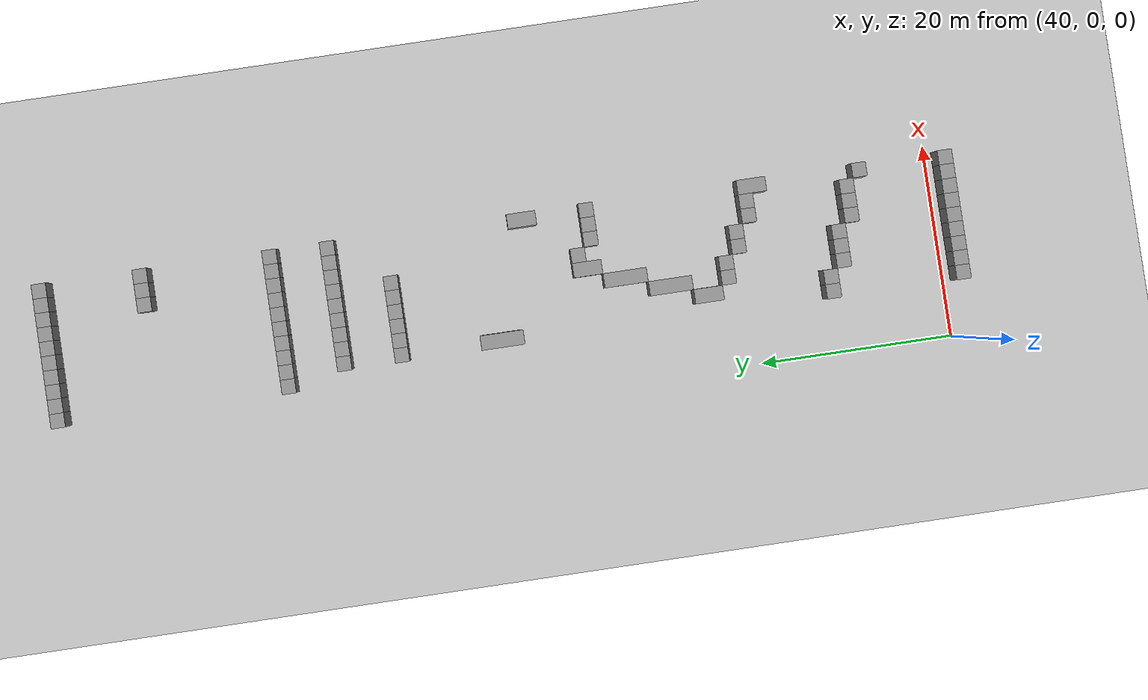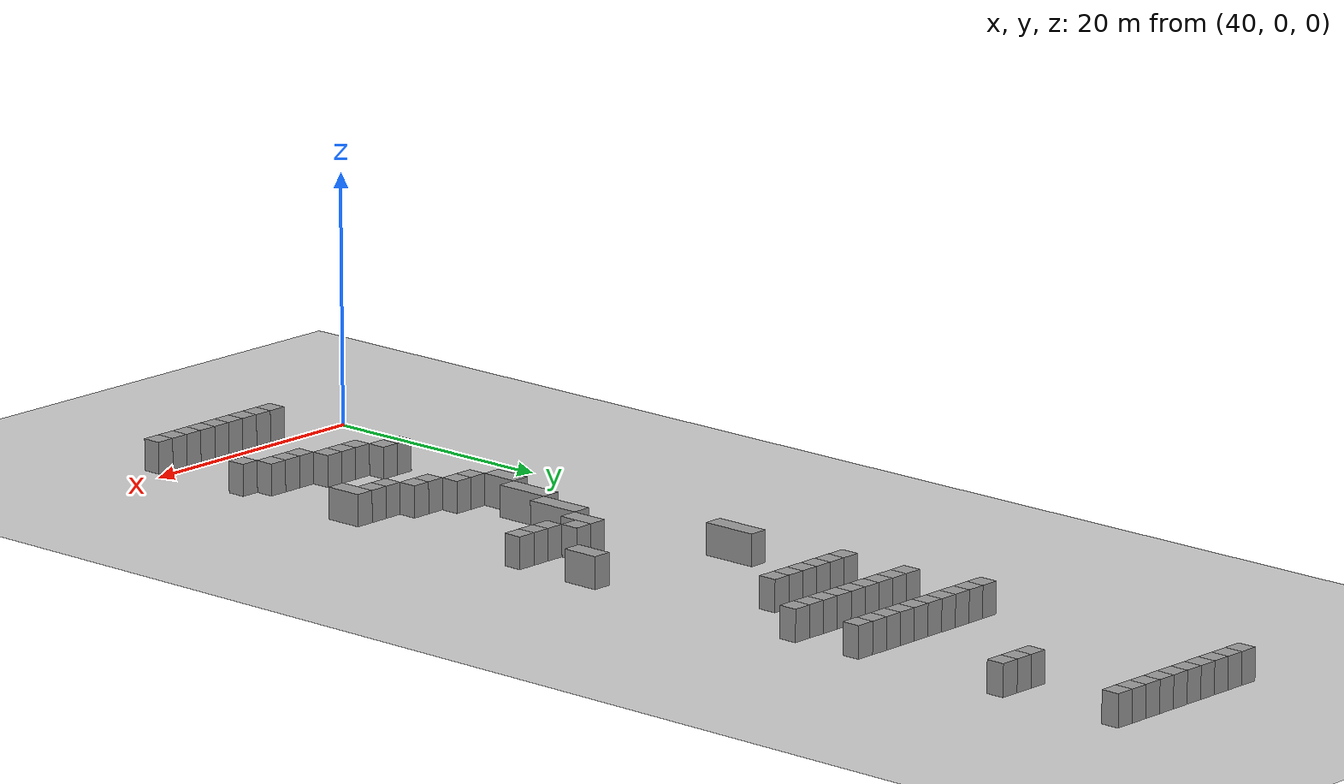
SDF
<sdf version="1.4">
 <world name="1_wall">
  <model name="ground_plane">
   <static>1</static>
   <link name="link">
    <collision name="collision">
     <geometry><plane><normal>0 0 1</normal><size>1000 1000</size></plane></geometry>
     <surface><friction><ode><mu>100</mu><mu2>50</mu2></ode></friction></surface>
    </collision>
    <visual name="visual">
     <cast_shadows>0</cast_shadows>
     <geometry><plane><normal>0 0 1</normal><size>10000 10000</size></plane></geometry>
     <material>
      <script><uri>file://media/materials/scripts/gazebo.material</uri><name>Gazebo/Grey</name></script>
     </material>
    </visual>
    <velocity_decay><linear>0</linear><angular>0</angular></velocity_decay>
   </link>
  </model>
  <model name="Wall_218">
   <static>1</static>
   <link name="Wall_218">
    <collision name="Wall_Collision_218">
     <geometry><box><size>1.5 1.5 2.5</size></box></geometry>
     <pose>0 0 1.25 0 -0 0</pose>
    </collision>
    <visual name="Wall_Visual_218">
     <pose>0 0 1.25 0 -0 0</pose>
     <geometry><box><size>1.5 1.5 2.5</size></box></geometry>
     <material>
      <script><uri>file://media/materials/scripts/gazebo.material</uri><name>Gazebo/Grey</name></script>
     </material>
    </visual>
    <velocity_decay><linear>0</linear><angular>0</angular></velocity_decay>
    <pose>45.0 69.0 0 0 0 1.5707963267948966</pose>
   </link>
  </model>
  <model name="Wall_219">
   <static>1</static>
   <link name="Wall_219">
    <collision name="Wall_Collision_219">
     <geometry><box><size>1.5 1.5 2.5</size></box></geometry>
     <pose>0 0 1.25 0 -0 0</pose>
    </collision>
    <visual name="Wall_Visual_219">
     <pose>0 0 1.25 0 -0 0</pose>
     <geometry><box><size>1.5 1.5 2.5</size></box></geometry>
     <material>
      <script><uri>file://media/materials/scripts/gazebo.material</uri><name>Gazebo/Grey</name></script>
     </material>
    </visual>
    <velocity_decay><linear>0</linear><angular>0</angular></velocity_decay>
    <pose>45.0 93.0 0 0 0 1.5707963267948966</pose>
   </link>
  </model>
  <model name="Wall_220">
   <static>1</static>
   <link name="Wall_220">
    <collision name="Wall_Collision_220">
     <geometry><box><size>1.5 1.5 2.5</size></box></geometry>
     <pose>0 0 1.25 0 -0 0</pose>
    </collision>
    <visual name="Wall_Visual_220">
     <pose>0 0 1.25 0 -0 0</pose>
     <geometry><box><size>1.5 1.5 2.5</size></box></geometry>
     <material>
      <script><uri>file://media/materials/scripts/gazebo.material</uri><name>Gazebo/Grey</name></script>
     </material>
    </visual>
    <velocity_decay><linear>0</linear><angular>0</angular></velocity_decay>
    <pose>46.5 -1.5 0 0 0 1.5707963267948966</pose>
   </link>
  </model>
  <model name="Wall_221">
   <static>1</static>
   <link name="Wall_221">
    <collision name="Wall_Collision_221">
     <geometry><box><size>1.5 1.5 2.5</size></box></geometry>
     <pose>0 0 1.25 0 -0 0</pose>
    </collision>
    <visual name="Wall_Visual_221">
     <pose>0 0 1.25 0 -0 0</pose>
     <geometry><box><size>1.5 1.5 2.5</size></box></geometry>
     <material>
      <script><uri>file://media/materials/scripts/gazebo.material</uri><name>Gazebo/Grey</name></script>
     </material>
    </visual>
    <velocity_decay><linear>0</linear><angular>0</angular></velocity_decay>
    <pose>46.5 12.0 0 0 0 1.5707963267948966</pose>
   </link>
  </model>
  <model name="Wall_222">
   <static>1</static>
   <link name="Wall_222">
    <collision name="Wall_Collision_222">
     <geometry><box><size>4.5 1.5 2.5</size></box></geometry>
     <pose>0 0 1.25 0 -0 0</pose>
    </collision>
    <visual name="Wall_Visual_222">
     <pose>0 0 1.25 0 -0 0</pose>
     <geometry><box><size>4.5 1.5 2.5</size></box></geometry>
     <material>
      <script><uri>file://media/materials/scripts/gazebo.material</uri><name>Gazebo/Grey</name></script>
     </material>
    </visual>
    <velocity_decay><linear>0</linear><angular>0</angular></velocity_decay>
    <pose>46.5 46.5 0 0 0 1.5707963267948966</pose>
   </link>
  </model>
  <model name="Wall_223">
   <static>1</static>
   <link name="Wall_223">
    <collision name="Wall_Collision_223">
     <geometry><box><size>1.5 1.5 2.5</size></box></geometry>
     <pose>0 0 1.25 0 -0 0</pose>
    </collision>
    <visual name="Wall_Visual_223">
     <pose>0 0 1.25 0 -0 0</pose>
     <geometry><box><size>1.5 1.5 2.5</size></box></geometry>
     <material>
      <script><uri>file://media/materials/scripts/gazebo.material</uri><name>Gazebo/Grey</name></script>
     </material>
    </visual>
    <velocity_decay><linear>0</linear><angular>0</angular></velocity_decay>
    <pose>46.5 57.0 0 0 0 1.5707963267948966</pose>
   </link>
  </model>
  <model name="Wall_224">
   <static>1</static>
   <link name="Wall_224">
    <collision name="Wall_Collision_224">
     <geometry><box><size>1.5 1.5 2.5</size></box></geometry>
     <pose>0 0 1.25 0 -0 0</pose>
    </collision>
    <visual name="Wall_Visual_224">
     <pose>0 0 1.25 0 -0 0</pose>
     <geometry><box><size>1.5 1.5 2.5</size></box></geometry>
     <material>
      <script><uri>file://media/materials/scripts/gazebo.material</uri><name>Gazebo/Grey</name></script>
     </material>
    </visual>
    <velocity_decay><linear>0</linear><angular>0</angular></velocity_decay>
    <pose>46.5 63.0 0 0 0 1.5707963267948966</pose>
   </link>
  </model>
  <model name="Wall_225">
   <static>1</static>
   <link name="Wall_225">
    <collision name="Wall_Collision_225">
     <geometry><box><size>1.5 1.5 2.5</size></box></geometry>
     <pose>0 0 1.25 0 -0 0</pose>
    </collision>
    <visual name="Wall_Visual_225">
     <pose>0 0 1.25 0 -0 0</pose>
     <geometry><box><size>1.5 1.5 2.5</size></box></geometry>
     <material>
      <script><uri>file://media/materials/scripts/gazebo.material</uri><name>Gazebo/Grey</name></script>
     </material>
    </visual>
    <velocity_decay><linear>0</linear><angular>0</angular></velocity_decay>
    <pose>46.5 69.0 0 0 0 1.5707963267948966</pose>
   </link>
  </model>
  <model name="Wall_226">
   <static>1</static>
   <link name="Wall_226">
    <collision name="Wall_Collision_226">
     <geometry><box><size>1.5 1.5 2.5</size></box></geometry>
     <pose>0 0 1.25 0 -0 0</pose>
    </collision>
    <visual name="Wall_Visual_226">
     <pose>0 0 1.25 0 -0 0</pose>
     <geometry><box><size>1.5 1.5 2.5</size></box></geometry>
     <material>
      <script><uri>file://media/materials/scripts/gazebo.material</uri><name>Gazebo/Grey</name></script>
     </material>
    </visual>
    <velocity_decay><linear>0</linear><angular>0</angular></velocity_decay>
    <pose>46.5 93.0 0 0 0 1.5707963267948966</pose>
   </link>
  </model>
  <model name="Wall_227">
   <static>1</static>
   <link name="Wall_227">
    <collision name="Wall_Collision_227">
     <geometry><box><size>1.5 1.5 2.5</size></box></geometry>
     <pose>0 0 1.25 0 -0 0</pose>
    </collision>
    <visual name="Wall_Visual_227">
     <pose>0 0 1.25 0 -0 0</pose>
     <geometry><box><size>1.5 1.5 2.5</size></box></geometry>
     <material>
      <script><uri>file://media/materials/scripts/gazebo.material</uri><name>Gazebo/Grey</name></script>
     </material>
    </visual>
    <velocity_decay><linear>0</linear><angular>0</angular></velocity_decay>
    <pose>48.0 -1.5 0 0 0 1.5707963267948966</pose>
   </link>
  </model>
  <model name="Wall_228">
   <static>1</static>
   <link name="Wall_228">
    <collision name="Wall_Collision_228">
     <geometry><box><size>1.5 1.5 2.5</size></box></geometry>
     <pose>0 0 1.25 0 -0 0</pose>
    </collision>
    <visual name="Wall_Visual_228">
     <pose>0 0 1.25 0 -0 0</pose>
     <geometry><box><size>1.5 1.5 2.5</size></box></geometry>
     <material>
      <script><uri>file://media/materials/scripts/gazebo.material</uri><name>Gazebo/Grey</name></script>
     </material>
    </visual>
    <velocity_decay><linear>0</linear><angular>0</angular></velocity_decay>
    <pose>48.0 12.0 0 0 0 1.5707963267948966</pose>
   </link>
  </model>
  <model name="Wall_229">
   <static>1</static>
   <link name="Wall_229">
    <collision name="Wall_Collision_229">
     <geometry><box><size>3.0 1.5 2.5</size></box></geometry>
     <pose>0 0 1.25 0 -0 0</pose>
    </collision>
    <visual name="Wall_Visual_229">
     <pose>0 0 1.25 0 -0 0</pose>
     <geometry><box><size>3.0 1.5 2.5</size></box></geometry>
     <material>
      <script><uri>file://media/materials/scripts/gazebo.material</uri><name>Gazebo/Grey</name></script>
     </material>
    </visual>
    <velocity_decay><linear>0</linear><angular>0</angular></velocity_decay>
    <pose>48.0 24.75 0 0 0 1.5707963267948966</pose>
   </link>
  </model>
  <model name="Wall_230">
   <static>1</static>
   <link name="Wall_230">
    <collision name="Wall_Collision_230">
     <geometry><box><size>1.5 1.5 2.5</size></box></geometry>
     <pose>0 0 1.25 0 -0 0</pose>
    </collision>
    <visual name="Wall_Visual_230">
     <pose>0 0 1.25 0 -0 0</pose>
     <geometry><box><size>1.5 1.5 2.5</size></box></geometry>
     <material>
      <script><uri>file://media/materials/scripts/gazebo.material</uri><name>Gazebo/Grey</name></script>
     </material>
    </visual>
    <velocity_decay><linear>0</linear><angular>0</angular></velocity_decay>
    <pose>48.0 57.0 0 0 0 1.5707963267948966</pose>
   </link>
  </model>
  <model name="Wall_231">
   <static>1</static>
   <link name="Wall_231">
    <collision name="Wall_Collision_231">
     <geometry><box><size>1.5 1.5 2.5</size></box></geometry>
     <pose>0 0 1.25 0 -0 0</pose>
    </collision>
    <visual name="Wall_Visual_231">
     <pose>0 0 1.25 0 -0 0</pose>
     <geometry><box><size>1.5 1.5 2.5</size></box></geometry>
     <material>
      <script><uri>file://media/materials/scripts/gazebo.material</uri><name>Gazebo/Grey</name></script>
     </material>
    </visual>
    <velocity_decay><linear>0</linear><angular>0</angular></velocity_decay>
    <pose>48.0 63.0 0 0 0 1.5707963267948966</pose>
   </link>
  </model>
  <model name="Wall_232">
   <static>1</static>
   <link name="Wall_232">
    <collision name="Wall_Collision_232">
     <geometry><box><size>1.5 1.5 2.5</size></box></geometry>
     <pose>0 0 1.25 0 -0 0</pose>
    </collision>
    <visual name="Wall_Visual_232">
     <pose>0 0 1.25 0 -0 0</pose>
     <geometry><box><size>1.5 1.5 2.5</size></box></geometry>
     <material>
      <script><uri>file://media/materials/scripts/gazebo.material</uri><name>Gazebo/Grey</name></script>
     </material>
    </visual>
    <velocity_decay><linear>0</linear><angular>0</angular></velocity_decay>
    <pose>48.0 69.0 0 0 0 1.5707963267948966</pose>
   </link>
  </model>
  <model name="Wall_233">
   <static>1</static>
   <link name="Wall_233">
    <collision name="Wall_Collision_233">
     <geometry><box><size>1.5 1.5 2.5</size></box></geometry>
     <pose>0 0 1.25 0 -0 0</pose>
    </collision>
    <visual name="Wall_Visual_233">
     <pose>0 0 1.25 0 -0 0</pose>
     <geometry><box><size>1.5 1.5 2.5</size></box></geometry>
     <material>
      <script><uri>file://media/materials/scripts/gazebo.material</uri><name>Gazebo/Grey</name></script>
     </material>
    </visual>
    <velocity_decay><linear>0</linear><angular>0</angular></velocity_decay>
    <pose>48.0 93.0 0 0 0 1.5707963267948966</pose>
   </link>
  </model>
  <model name="Wall_234">
   <static>1</static>
   <link name="Wall_234">
    <collision name="Wall_Collision_234">
     <geometry><box><size>1.5 1.5 2.5</size></box></geometry>
     <pose>0 0 1.25 0 -0 0</pose>
    </collision>
    <visual name="Wall_Visual_234">
     <pose>0 0 1.25 0 -0 0</pose>
     <geometry><box><size>1.5 1.5 2.5</size></box></geometry>
     <material>
      <script><uri>file://media/materials/scripts/gazebo.material</uri><name>Gazebo/Grey</name></script>
     </material>
    </visual>
    <velocity_decay><linear>0</linear><angular>0</angular></velocity_decay>
    <pose>49.5 -1.5 0 0 0 1.5707963267948966</pose>
   </link>
  </model>
  <model name="Wall_235">
   <static>1</static>
   <link name="Wall_235">
    <collision name="Wall_Collision_235">
     <geometry><box><size>1.5 1.5 2.5</size></box></geometry>
     <pose>0 0 1.25 0 -0 0</pose>
    </collision>
    <visual name="Wall_Visual_235">
     <pose>0 0 1.25 0 -0 0</pose>
     <geometry><box><size>1.5 1.5 2.5</size></box></geometry>
     <material>
      <script><uri>file://media/materials/scripts/gazebo.material</uri><name>Gazebo/Grey</name></script>
     </material>
    </visual>
    <velocity_decay><linear>0</linear><angular>0</angular></velocity_decay>
    <pose>49.5 10.5 0 0 0 1.5707963267948966</pose>
   </link>
  </model>
  <model name="Wall_236">
   <static>1</static>
   <link name="Wall_236">
    <collision name="Wall_Collision_236">
     <geometry><box><size>1.5 1.5 2.5</size></box></geometry>
     <pose>0 0 1.25 0 -0 0</pose>
    </collision>
    <visual name="Wall_Visual_236">
     <pose>0 0 1.25 0 -0 0</pose>
     <geometry><box><size>1.5 1.5 2.5</size></box></geometry>
     <material>
      <script><uri>file://media/materials/scripts/gazebo.material</uri><name>Gazebo/Grey</name></script>
     </material>
    </visual>
    <velocity_decay><linear>0</linear><angular>0</angular></velocity_decay>
    <pose>49.5 22.5 0 0 0 1.5707963267948966</pose>
   </link>
  </model>
  <model name="Wall_237">
   <static>1</static>
   <link name="Wall_237">
    <collision name="Wall_Collision_237">
     <geometry><box><size>4.5 1.5 2.5</size></box></geometry>
     <pose>0 0 1.25 0 -0 0</pose>
    </collision>
    <visual name="Wall_Visual_237">
     <pose>0 0 1.25 0 -0 0</pose>
     <geometry><box><size>4.5 1.5 2.5</size></box></geometry>
     <material>
      <script><uri>file://media/materials/scripts/gazebo.material</uri><name>Gazebo/Grey</name></script>
     </material>
    </visual>
    <velocity_decay><linear>0</linear><angular>0</angular></velocity_decay>
    <pose>49.5 28.5 0 0 0 1.5707963267948966</pose>
   </link>
  </model>
  <model name="Wall_238">
   <static>1</static>
   <link name="Wall_238">
    <collision name="Wall_Collision_238">
     <geometry><box><size>1.5 1.5 2.5</size></box></geometry>
     <pose>0 0 1.25 0 -0 0</pose>
    </collision>
    <visual name="Wall_Visual_238">
     <pose>0 0 1.25 0 -0 0</pose>
     <geometry><box><size>1.5 1.5 2.5</size></box></geometry>
     <material>
      <script><uri>file://media/materials/scripts/gazebo.material</uri><name>Gazebo/Grey</name></script>
     </material>
    </visual>
    <velocity_decay><linear>0</linear><angular>0</angular></velocity_decay>
    <pose>49.5 57.0 0 0 0 1.5707963267948966</pose>
   </link>
  </model>
  <model name="Wall_239">
   <static>1</static>
   <link name="Wall_239">
    <collision name="Wall_Collision_239">
     <geometry><box><size>1.5 1.5 2.5</size></box></geometry>
     <pose>0 0 1.25 0 -0 0</pose>
    </collision>
    <visual name="Wall_Visual_239">
     <pose>0 0 1.25 0 -0 0</pose>
     <geometry><box><size>1.5 1.5 2.5</size></box></geometry>
     <material>
      <script><uri>file://media/materials/scripts/gazebo.material</uri><name>Gazebo/Grey</name></script>
     </material>
    </visual>
    <velocity_decay><linear>0</linear><angular>0</angular></velocity_decay>
    <pose>49.5 63.0 0 0 0 1.5707963267948966</pose>
   </link>
  </model>
  <model name="Wall_240">
   <static>1</static>
   <link name="Wall_240">
    <collision name="Wall_Collision_240">
     <geometry><box><size>1.5 1.5 2.5</size></box></geometry>
     <pose>0 0 1.25 0 -0 0</pose>
    </collision>
    <visual name="Wall_Visual_240">
     <pose>0 0 1.25 0 -0 0</pose>
     <geometry><box><size>1.5 1.5 2.5</size></box></geometry>
     <material>
      <script><uri>file://media/materials/scripts/gazebo.material</uri><name>Gazebo/Grey</name></script>
     </material>
    </visual>
    <velocity_decay><linear>0</linear><angular>0</angular></velocity_decay>
    <pose>49.5 69.0 0 0 0 1.5707963267948966</pose>
   </link>
  </model>
  <model name="Wall_241">
   <static>1</static>
   <link name="Wall_241">
    <collision name="Wall_Collision_241">
     <geometry><box><size>1.5 1.5 2.5</size></box></geometry>
     <pose>0 0 1.25 0 -0 0</pose>
    </collision>
    <visual name="Wall_Visual_241">
     <pose>0 0 1.25 0 -0 0</pose>
     <geometry><box><size>1.5 1.5 2.5</size></box></geometry>
     <material>
      <script><uri>file://media/materials/scripts/gazebo.material</uri><name>Gazebo/Grey</name></script>
     </material>
    </visual>
    <velocity_decay><linear>0</linear><angular>0</angular></velocity_decay>
    <pose>49.5 93.0 0 0 0 1.5707963267948966</pose>
   </link>
  </model>
  <model name="Wall_242">
   <static>1</static>
   <link name="Wall_242">
    <collision name="Wall_Collision_242">
     <geometry><box><size>1.5 1.5 2.5</size></box></geometry>
     <pose>0 0 1.25 0 -0 0</pose>
    </collision>
    <visual name="Wall_Visual_242">
     <pose>0 0 1.25 0 -0 0</pose>
     <geometry><box><size>1.5 1.5 2.5</size></box></geometry>
     <material>
      <script><uri>file://media/materials/scripts/gazebo.material</uri><name>Gazebo/Grey</name></script>
     </material>
    </visual>
    <velocity_decay><linear>0</linear><angular>0</angular></velocity_decay>
    <pose>51.0 -1.5 0 0 0 1.5707963267948966</pose>
   </link>
  </model>
  <model name="Wall_243">
   <static>1</static>
   <link name="Wall_243">
    <collision name="Wall_Collision_243">
     <geometry><box><size>1.5 1.5 2.5</size></box></geometry>
     <pose>0 0 1.25 0 -0 0</pose>
    </collision>
    <visual name="Wall_Visual_243">
     <pose>0 0 1.25 0 -0 0</pose>
     <geometry><box><size>1.5 1.5 2.5</size></box></geometry>
     <material>
      <script><uri>file://media/materials/scripts/gazebo.material</uri><name>Gazebo/Grey</name></script>
     </material>
    </visual>
    <velocity_decay><linear>0</linear><angular>0</angular></velocity_decay>
    <pose>51.0 10.5 0 0 0 1.5707963267948966</pose>
   </link>
  </model>
  <model name="Wall_244">
   <static>1</static>
   <link name="Wall_244">
    <collision name="Wall_Collision_244">
     <geometry><box><size>1.5 1.5 2.5</size></box></geometry>
     <pose>0 0 1.25 0 -0 0</pose>
    </collision>
    <visual name="Wall_Visual_244">
     <pose>0 0 1.25 0 -0 0</pose>
     <geometry><box><size>1.5 1.5 2.5</size></box></geometry>
     <material>
      <script><uri>file://media/materials/scripts/gazebo.material</uri><name>Gazebo/Grey</name></script>
     </material>
    </visual>
    <velocity_decay><linear>0</linear><angular>0</angular></velocity_decay>
    <pose>51.0 22.5 0 0 0 1.5707963267948966</pose>
   </link>
  </model>
  <model name="Wall_245">
   <static>1</static>
   <link name="Wall_245">
    <collision name="Wall_Collision_245">
     <geometry><box><size>4.5 1.5 2.5</size></box></geometry>
     <pose>0 0 1.25 0 -0 0</pose>
    </collision>
    <visual name="Wall_Visual_245">
     <pose>0 0 1.25 0 -0 0</pose>
     <geometry><box><size>4.5 1.5 2.5</size></box></geometry>
     <material>
      <script><uri>file://media/materials/scripts/gazebo.material</uri><name>Gazebo/Grey</name></script>
     </material>
    </visual>
    <velocity_decay><linear>0</linear><angular>0</angular></velocity_decay>
    <pose>51.0 33.0 0 0 0 1.5707963267948966</pose>
   </link>
  </model>
  <model name="Wall_246">
   <static>1</static>
   <link name="Wall_246">
    <collision name="Wall_Collision_246">
     <geometry><box><size>1.5 1.5 2.5</size></box></geometry>
     <pose>0 0 1.25 0 -0 0</pose>
    </collision>
    <visual name="Wall_Visual_246">
     <pose>0 0 1.25 0 -0 0</pose>
     <geometry><box><size>1.5 1.5 2.5</size></box></geometry>
     <material>
      <script><uri>file://media/materials/scripts/gazebo.material</uri><name>Gazebo/Grey</name></script>
     </material>
    </visual>
    <velocity_decay><linear>0</linear><angular>0</angular></velocity_decay>
    <pose>51.0 57.0 0 0 0 1.5707963267948966</pose>
   </link>
  </model>
  <model name="Wall_247">
   <static>1</static>
   <link name="Wall_247">
    <collision name="Wall_Collision_247">
     <geometry><box><size>1.5 1.5 2.5</size></box></geometry>
     <pose>0 0 1.25 0 -0 0</pose>
    </collision>
    <visual name="Wall_Visual_247">
     <pose>0 0 1.25 0 -0 0</pose>
     <geometry><box><size>1.5 1.5 2.5</size></box></geometry>
     <material>
      <script><uri>file://media/materials/scripts/gazebo.material</uri><name>Gazebo/Grey</name></script>
     </material>
    </visual>
    <velocity_decay><linear>0</linear><angular>0</angular></velocity_decay>
    <pose>51.0 63.0 0 0 0 1.5707963267948966</pose>
   </link>
  </model>
  <model name="Wall_248">
   <static>1</static>
   <link name="Wall_248">
    <collision name="Wall_Collision_248">
     <geometry><box><size>1.5 1.5 2.5</size></box></geometry>
     <pose>0 0 1.25 0 -0 0</pose>
    </collision>
    <visual name="Wall_Visual_248">
     <pose>0 0 1.25 0 -0 0</pose>
     <geometry><box><size>1.5 1.5 2.5</size></box></geometry>
     <material>
      <script><uri>file://media/materials/scripts/gazebo.material</uri><name>Gazebo/Grey</name></script>
     </material>
    </visual>
    <velocity_decay><linear>0</linear><angular>0</angular></velocity_decay>
    <pose>51.0 69.0 0 0 0 1.5707963267948966</pose>
   </link>
  </model>
  <model name="Wall_249">
   <static>1</static>
   <link name="Wall_249">
    <collision name="Wall_Collision_249">
     <geometry><box><size>1.5 1.5 2.5</size></box></geometry>
     <pose>0 0 1.25 0 -0 0</pose>
    </collision>
    <visual name="Wall_Visual_249">
     <pose>0 0 1.25 0 -0 0</pose>
     <geometry><box><size>1.5 1.5 2.5</size></box></geometry>
     <material>
      <script><uri>file://media/materials/scripts/gazebo.material</uri><name>Gazebo/Grey</name></script>
     </material>
    </visual>
    <velocity_decay><linear>0</linear><angular>0</angular></velocity_decay>
    <pose>51.0 93.0 0 0 0 1.5707963267948966</pose>
   </link>
  </model>
  <model name="Wall_250">
   <static>1</static>
   <link name="Wall_250">
    <collision name="Wall_Collision_250">
     <geometry><box><size>1.5 1.5 2.5</size></box></geometry>
     <pose>0 0 1.25 0 -0 0</pose>
    </collision>
    <visual name="Wall_Visual_250">
     <pose>0 0 1.25 0 -0 0</pose>
     <geometry><box><size>1.5 1.5 2.5</size></box></geometry>
     <material>
      <script><uri>file://media/materials/scripts/gazebo.material</uri><name>Gazebo/Grey</name></script>
     </material>
    </visual>
    <velocity_decay><linear>0</linear><angular>0</angular></velocity_decay>
    <pose>52.5 -1.5 0 0 0 1.5707963267948966</pose>
   </link>
  </model>
  <model name="Wall_251">
   <static>1</static>
   <link name="Wall_251">
    <collision name="Wall_Collision_251">
     <geometry><box><size>1.5 1.5 2.5</size></box></geometry>
     <pose>0 0 1.25 0 -0 0</pose>
    </collision>
    <visual name="Wall_Visual_251">
     <pose>0 0 1.25 0 -0 0</pose>
     <geometry><box><size>1.5 1.5 2.5</size></box></geometry>
     <material>
      <script><uri>file://media/materials/scripts/gazebo.material</uri><name>Gazebo/Grey</name></script>
     </material>
    </visual>
    <velocity_decay><linear>0</linear><angular>0</angular></velocity_decay>
    <pose>52.5 10.5 0 0 0 1.5707963267948966</pose>
   </link>
  </model>
  <model name="Wall_252">
   <static>1</static>
   <link name="Wall_252">
    <collision name="Wall_Collision_252">
     <geometry><box><size>1.5 1.5 2.5</size></box></geometry>
     <pose>0 0 1.25 0 -0 0</pose>
    </collision>
    <visual name="Wall_Visual_252">
     <pose>0 0 1.25 0 -0 0</pose>
     <geometry><box><size>1.5 1.5 2.5</size></box></geometry>
     <material>
      <script><uri>file://media/materials/scripts/gazebo.material</uri><name>Gazebo/Grey</name></script>
     </material>
    </visual>
    <velocity_decay><linear>0</linear><angular>0</angular></velocity_decay>
    <pose>52.5 21.0 0 0 0 1.5707963267948966</pose>
   </link>
  </model>
  <model name="Wall_253">
   <static>1</static>
   <link name="Wall_253">
    <collision name="Wall_Collision_253">
     <geometry><box><size>3.0 1.5 2.5</size></box></geometry>
     <pose>0 0 1.25 0 -0 0</pose>
    </collision>
    <visual name="Wall_Visual_253">
     <pose>0 0 1.25 0 -0 0</pose>
     <geometry><box><size>3.0 1.5 2.5</size></box></geometry>
     <material>
      <script><uri>file://media/materials/scripts/gazebo.material</uri><name>Gazebo/Grey</name></script>
     </material>
    </visual>
    <velocity_decay><linear>0</linear><angular>0</angular></velocity_decay>
    <pose>52.5 36.75 0 0 0 1.5707963267948966</pose>
   </link>
  </model>
  <model name="Wall_254">
   <static>1</static>
   <link name="Wall_254">
    <collision name="Wall_Collision_254">
     <geometry><box><size>1.5 1.5 2.5</size></box></geometry>
     <pose>0 0 1.25 0 -0 0</pose>
    </collision>
    <visual name="Wall_Visual_254">
     <pose>0 0 1.25 0 -0 0</pose>
     <geometry><box><size>1.5 1.5 2.5</size></box></geometry>
     <material>
      <script><uri>file://media/materials/scripts/gazebo.material</uri><name>Gazebo/Grey</name></script>
     </material>
    </visual>
    <velocity_decay><linear>0</linear><angular>0</angular></velocity_decay>
    <pose>52.5 57.0 0 0 0 1.5707963267948966</pose>
   </link>
  </model>
  <model name="Wall_255">
   <static>1</static>
   <link name="Wall_255">
    <collision name="Wall_Collision_255">
     <geometry><box><size>1.5 1.5 2.5</size></box></geometry>
     <pose>0 0 1.25 0 -0 0</pose>
    </collision>
    <visual name="Wall_Visual_255">
     <pose>0 0 1.25 0 -0 0</pose>
     <geometry><box><size>1.5 1.5 2.5</size></box></geometry>
     <material>
      <script><uri>file://media/materials/scripts/gazebo.material</uri><name>Gazebo/Grey</name></script>
     </material>
    </visual>
    <velocity_decay><linear>0</linear><angular>0</angular></velocity_decay>
    <pose>52.5 63.0 0 0 0 1.5707963267948966</pose>
   </link>
  </model>
  <model name="Wall_256">
   <static>1</static>
   <link name="Wall_256">
    <collision name="Wall_Collision_256">
     <geometry><box><size>1.5 1.5 2.5</size></box></geometry>
     <pose>0 0 1.25 0 -0 0</pose>
    </collision>
    <visual name="Wall_Visual_256">
     <pose>0 0 1.25 0 -0 0</pose>
     <geometry><box><size>1.5 1.5 2.5</size></box></geometry>
     <material>
      <script><uri>file://media/materials/scripts/gazebo.material</uri><name>Gazebo/Grey</name></script>
     </material>
    </visual>
    <velocity_decay><linear>0</linear><angular>0</angular></velocity_decay>
    <pose>52.5 69.0 0 0 0 1.5707963267948966</pose>
   </link>
  </model>
  <model name="Wall_257">
   <static>1</static>
   <link name="Wall_257">
    <collision name="Wall_Collision_257">
     <geometry><box><size>1.5 1.5 2.5</size></box></geometry>
     <pose>0 0 1.25 0 -0 0</pose>
    </collision>
    <visual name="Wall_Visual_257">
     <pose>0 0 1.25 0 -0 0</pose>
     <geometry><box><size>1.5 1.5 2.5</size></box></geometry>
     <material>
      <script><uri>file://media/materials/scripts/gazebo.material</uri><name>Gazebo/Grey</name></script>
     </material>
    </visual>
    <velocity_decay><linear>0</linear><angular>0</angular></velocity_decay>
    <pose>52.5 93.0 0 0 0 1.5707963267948966</pose>
   </link>
  </model>
  <model name="Wall_258">
   <static>1</static>
   <link name="Wall_258">
    <collision name="Wall_Collision_258">
     <geometry><box><size>1.5 1.5 2.5</size></box></geometry>
     <pose>0 0 1.25 0 -0 0</pose>
    </collision>
    <visual name="Wall_Visual_258">
     <pose>0 0 1.25 0 -0 0</pose>
     <geometry><box><size>1.5 1.5 2.5</size></box></geometry>
     <material>
      <script><uri>file://media/materials/scripts/gazebo.material</uri><name>Gazebo/Grey</name></script>
     </material>
    </visual>
    <velocity_decay><linear>0</linear><angular>0</angular></velocity_decay>
    <pose>54.0 -1.5 0 0 0 1.5707963267948966</pose>
   </link>
  </model>
  <model name="Wall_259">
   <static>1</static>
   <link name="Wall_259">
    <collision name="Wall_Collision_259">
     <geometry><box><size>1.5 1.5 2.5</size></box></geometry>
     <pose>0 0 1.25 0 -0 0</pose>
    </collision>
    <visual name="Wall_Visual_259">
     <pose>0 0 1.25 0 -0 0</pose>
     <geometry><box><size>1.5 1.5 2.5</size></box></geometry>
     <material>
      <script><uri>file://media/materials/scripts/gazebo.material</uri><name>Gazebo/Grey</name></script>
     </material>
    </visual>
    <velocity_decay><linear>0</linear><angular>0</angular></velocity_decay>
    <pose>54.0 9.0 0 0 0 1.5707963267948966</pose>
   </link>
  </model>
  <model name="Wall_260">
   <static>1</static>
   <link name="Wall_260">
    <collision name="Wall_Collision_260">
     <geometry><box><size>1.5 1.5 2.5</size></box></geometry>
     <pose>0 0 1.25 0 -0 0</pose>
    </collision>
    <visual name="Wall_Visual_260">
     <pose>0 0 1.25 0 -0 0</pose>
     <geometry><box><size>1.5 1.5 2.5</size></box></geometry>
     <material>
      <script><uri>file://media/materials/scripts/gazebo.material</uri><name>Gazebo/Grey</name></script>
     </material>
    </visual>
    <velocity_decay><linear>0</linear><angular>0</angular></velocity_decay>
    <pose>54.0 21.0 0 0 0 1.5707963267948966</pose>
   </link>
  </model>
  <model name="Wall_261">
   <static>1</static>
   <link name="Wall_261">
    <collision name="Wall_Collision_261">
     <geometry><box><size>1.5 1.5 2.5</size></box></geometry>
     <pose>0 0 1.25 0 -0 0</pose>
    </collision>
    <visual name="Wall_Visual_261">
     <pose>0 0 1.25 0 -0 0</pose>
     <geometry><box><size>1.5 1.5 2.5</size></box></geometry>
     <material>
      <script><uri>file://media/materials/scripts/gazebo.material</uri><name>Gazebo/Grey</name></script>
     </material>
    </visual>
    <velocity_decay><linear>0</linear><angular>0</angular></velocity_decay>
    <pose>54.0 37.5 0 0 0 1.5707963267948966</pose>
   </link>
  </model>
  <model name="Wall_262">
   <static>1</static>
   <link name="Wall_262">
    <collision name="Wall_Collision_262">
     <geometry><box><size>1.5 1.5 2.5</size></box></geometry>
     <pose>0 0 1.25 0 -0 0</pose>
    </collision>
    <visual name="Wall_Visual_262">
     <pose>0 0 1.25 0 -0 0</pose>
     <geometry><box><size>1.5 1.5 2.5</size></box></geometry>
     <material>
      <script><uri>file://media/materials/scripts/gazebo.material</uri><name>Gazebo/Grey</name></script>
     </material>
    </visual>
    <velocity_decay><linear>0</linear><angular>0</angular></velocity_decay>
    <pose>54.0 57.0 0 0 0 1.5707963267948966</pose>
   </link>
  </model>
  <model name="Wall_263">
   <static>1</static>
   <link name="Wall_263">
    <collision name="Wall_Collision_263">
     <geometry><box><size>1.5 1.5 2.5</size></box></geometry>
     <pose>0 0 1.25 0 -0 0</pose>
    </collision>
    <visual name="Wall_Visual_263">
     <pose>0 0 1.25 0 -0 0</pose>
     <geometry><box><size>1.5 1.5 2.5</size></box></geometry>
     <material>
      <script><uri>file://media/materials/scripts/gazebo.material</uri><name>Gazebo/Grey</name></script>
     </material>
    </visual>
    <velocity_decay><linear>0</linear><angular>0</angular></velocity_decay>
    <pose>54.0 63.0 0 0 0 1.5707963267948966</pose>
   </link>
  </model>
  <model name="Wall_264">
   <static>1</static>
   <link name="Wall_264">
    <collision name="Wall_Collision_264">
     <geometry><box><size>1.5 1.5 2.5</size></box></geometry>
     <pose>0 0 1.25 0 -0 0</pose>
    </collision>
    <visual name="Wall_Visual_264">
     <pose>0 0 1.25 0 -0 0</pose>
     <geometry><box><size>1.5 1.5 2.5</size></box></geometry>
     <material>
      <script><uri>file://media/materials/scripts/gazebo.material</uri><name>Gazebo/Grey</name></script>
     </material>
    </visual>
    <velocity_decay><linear>0</linear><angular>0</angular></velocity_decay>
    <pose>54.0 69.0 0 0 0 1.5707963267948966</pose>
   </link>
  </model>
  <model name="Wall_265">
   <static>1</static>
   <link name="Wall_265">
    <collision name="Wall_Collision_265">
     <geometry><box><size>1.5 1.5 2.5</size></box></geometry>
     <pose>0 0 1.25 0 -0 0</pose>
    </collision>
    <visual name="Wall_Visual_265">
     <pose>0 0 1.25 0 -0 0</pose>
     <geometry><box><size>1.5 1.5 2.5</size></box></geometry>
     <material>
      <script><uri>file://media/materials/scripts/gazebo.material</uri><name>Gazebo/Grey</name></script>
     </material>
    </visual>
    <velocity_decay><linear>0</linear><angular>0</angular></velocity_decay>
    <pose>54.0 93.0 0 0 0 1.5707963267948966</pose>
   </link>
  </model>
  <model name="Wall_266">
   <static>1</static>
   <link name="Wall_266">
    <collision name="Wall_Collision_266">
     <geometry><box><size>1.5 1.5 2.5</size></box></geometry>
     <pose>0 0 1.25 0 -0 0</pose>
    </collision>
    <visual name="Wall_Visual_266">
     <pose>0 0 1.25 0 -0 0</pose>
     <geometry><box><size>1.5 1.5 2.5</size></box></geometry>
     <material>
      <script><uri>file://media/materials/scripts/gazebo.material</uri><name>Gazebo/Grey</name></script>
     </material>
    </visual>
    <velocity_decay><linear>0</linear><angular>0</angular></velocity_decay>
    <pose>55.5 -1.5 0 0 0 1.5707963267948966</pose>
   </link>
  </model>
  <model name="Wall_267">
   <static>1</static>
   <link name="Wall_267">
    <collision name="Wall_Collision_267">
     <geometry><box><size>1.5 1.5 2.5</size></box></geometry>
     <pose>0 0 1.25 0 -0 0</pose>
    </collision>
    <visual name="Wall_Visual_267">
     <pose>0 0 1.25 0 -0 0</pose>
     <geometry><box><size>1.5 1.5 2.5</size></box></geometry>
     <material>
      <script><uri>file://media/materials/scripts/gazebo.material</uri><name>Gazebo/Grey</name></script>
     </material>
    </visual>
    <velocity_decay><linear>0</linear><angular>0</angular></velocity_decay>
    <pose>55.5 9.0 0 0 0 1.5707963267948966</pose>
   </link>
  </model>
  <model name="Wall_268">
   <static>1</static>
   <link name="Wall_268">
    <collision name="Wall_Collision_268">
     <geometry><box><size>1.5 1.5 2.5</size></box></geometry>
     <pose>0 0 1.25 0 -0 0</pose>
    </collision>
    <visual name="Wall_Visual_268">
     <pose>0 0 1.25 0 -0 0</pose>
     <geometry><box><size>1.5 1.5 2.5</size></box></geometry>
     <material>
      <script><uri>file://media/materials/scripts/gazebo.material</uri><name>Gazebo/Grey</name></script>
     </material>
    </visual>
    <velocity_decay><linear>0</linear><angular>0</angular></velocity_decay>
    <pose>55.5 19.5 0 0 0 1.5707963267948966</pose>
   </link>
  </model>
  <model name="Wall_269">
   <static>1</static>
   <link name="Wall_269">
    <collision name="Wall_Collision_269">
     <geometry><box><size>1.5 1.5 2.5</size></box></geometry>
     <pose>0 0 1.25 0 -0 0</pose>
    </collision>
    <visual name="Wall_Visual_269">
     <pose>0 0 1.25 0 -0 0</pose>
     <geometry><box><size>1.5 1.5 2.5</size></box></geometry>
     <material>
      <script><uri>file://media/materials/scripts/gazebo.material</uri><name>Gazebo/Grey</name></script>
     </material>
    </visual>
    <velocity_decay><linear>0</linear><angular>0</angular></velocity_decay>
    <pose>55.5 36.0 0 0 0 1.5707963267948966</pose>
   </link>
  </model>
  <model name="Wall_270">
   <static>1</static>
   <link name="Wall_270">
    <collision name="Wall_Collision_270">
     <geometry><box><size>1.5 1.5 2.5</size></box></geometry>
     <pose>0 0 1.25 0 -0 0</pose>
    </collision>
    <visual name="Wall_Visual_270">
     <pose>0 0 1.25 0 -0 0</pose>
     <geometry><box><size>1.5 1.5 2.5</size></box></geometry>
     <material>
      <script><uri>file://media/materials/scripts/gazebo.material</uri><name>Gazebo/Grey</name></script>
     </material>
    </visual>
    <velocity_decay><linear>0</linear><angular>0</angular></velocity_decay>
    <pose>55.5 63.0 0 0 0 1.5707963267948966</pose>
   </link>
  </model>
  <model name="Wall_271">
   <static>1</static>
   <link name="Wall_271">
    <collision name="Wall_Collision_271">
     <geometry><box><size>1.5 1.5 2.5</size></box></geometry>
     <pose>0 0 1.25 0 -0 0</pose>
    </collision>
    <visual name="Wall_Visual_271">
     <pose>0 0 1.25 0 -0 0</pose>
     <geometry><box><size>1.5 1.5 2.5</size></box></geometry>
     <material>
      <script><uri>file://media/materials/scripts/gazebo.material</uri><name>Gazebo/Grey</name></script>
     </material>
    </visual>
    <velocity_decay><linear>0</linear><angular>0</angular></velocity_decay>
    <pose>55.5 69.0 0 0 0 1.5707963267948966</pose>
   </link>
  </model>
  <model name="Wall_272">
   <static>1</static>
   <link name="Wall_272">
    <collision name="Wall_Collision_272">
     <geometry><box><size>1.5 1.5 2.5</size></box></geometry>
     <pose>0 0 1.25 0 -0 0</pose>
    </collision>
    <visual name="Wall_Visual_272">
     <pose>0 0 1.25 0 -0 0</pose>
     <geometry><box><size>1.5 1.5 2.5</size></box></geometry>
     <material>
      <script><uri>file://media/materials/scripts/gazebo.material</uri><name>Gazebo/Grey</name></script>
     </material>
    </visual>
    <velocity_decay><linear>0</linear><angular>0</angular></velocity_decay>
    <pose>55.5 82.5 0 0 0 1.5707963267948966</pose>
   </link>
  </model>
  <model name="Wall_273">
   <static>1</static>
   <link name="Wall_273">
    <collision name="Wall_Collision_273">
     <geometry><box><size>1.5 1.5 2.5</size></box></geometry>
     <pose>0 0 1.25 0 -0 0</pose>
    </collision>
    <visual name="Wall_Visual_273">
     <pose>0 0 1.25 0 -0 0</pose>
     <geometry><box><size>1.5 1.5 2.5</size></box></geometry>
     <material>
      <script><uri>file://media/materials/scripts/gazebo.material</uri><name>Gazebo/Grey</name></script>
     </material>
    </visual>
    <velocity_decay><linear>0</linear><angular>0</angular></velocity_decay>
    <pose>55.5 93.0 0 0 0 1.5707963267948966</pose>
   </link>
  </model>
  <model name="Wall_274">
   <static>1</static>
   <link name="Wall_274">
    <collision name="Wall_Collision_274">
     <geometry><box><size>1.5 1.5 2.5</size></box></geometry>
     <pose>0 0 1.25 0 -0 0</pose>
    </collision>
    <visual name="Wall_Visual_274">
     <pose>0 0 1.25 0 -0 0</pose>
     <geometry><box><size>1.5 1.5 2.5</size></box></geometry>
     <material>
      <script><uri>file://media/materials/scripts/gazebo.material</uri><name>Gazebo/Grey</name></script>
     </material>
    </visual>
    <velocity_decay><linear>0</linear><angular>0</angular></velocity_decay>
    <pose>57.0 -1.5 0 0 0 1.5707963267948966</pose>
   </link>
  </model>
  <model name="Wall_275">
   <static>1</static>
   <link name="Wall_275">
    <collision name="Wall_Collision_275">
     <geometry><box><size>1.5 1.5 2.5</size></box></geometry>
     <pose>0 0 1.25 0 -0 0</pose>
    </collision>
    <visual name="Wall_Visual_275">
     <pose>0 0 1.25 0 -0 0</pose>
     <geometry><box><size>1.5 1.5 2.5</size></box></geometry>
     <material>
      <script><uri>file://media/materials/scripts/gazebo.material</uri><name>Gazebo/Grey</name></script>
     </material>
    </visual>
    <velocity_decay><linear>0</linear><angular>0</angular></velocity_decay>
    <pose>57.0 9.0 0 0 0 1.5707963267948966</pose>
   </link>
  </model>
  <model name="Wall_276">
   <static>1</static>
   <link name="Wall_276">
    <collision name="Wall_Collision_276">
     <geometry><box><size>1.5 1.5 2.5</size></box></geometry>
     <pose>0 0 1.25 0 -0 0</pose>
    </collision>
    <visual name="Wall_Visual_276">
     <pose>0 0 1.25 0 -0 0</pose>
     <geometry><box><size>1.5 1.5 2.5</size></box></geometry>
     <material>
      <script><uri>file://media/materials/scripts/gazebo.material</uri><name>Gazebo/Grey</name></script>
     </material>
    </visual>
    <velocity_decay><linear>0</linear><angular>0</angular></velocity_decay>
    <pose>57.0 19.5 0 0 0 1.5707963267948966</pose>
   </link>
  </model>
  <model name="Wall_277">
   <static>1</static>
   <link name="Wall_277">
    <collision name="Wall_Collision_277">
     <geometry><box><size>1.5 1.5 2.5</size></box></geometry>
     <pose>0 0 1.25 0 -0 0</pose>
    </collision>
    <visual name="Wall_Visual_277">
     <pose>0 0 1.25 0 -0 0</pose>
     <geometry><box><size>1.5 1.5 2.5</size></box></geometry>
     <material>
      <script><uri>file://media/materials/scripts/gazebo.material</uri><name>Gazebo/Grey</name></script>
     </material>
    </visual>
    <velocity_decay><linear>0</linear><angular>0</angular></velocity_decay>
    <pose>57.0 36.0 0 0 0 1.5707963267948966</pose>
   </link>
  </model>
  <model name="Wall_278">
   <static>1</static>
   <link name="Wall_278">
    <collision name="Wall_Collision_278">
     <geometry><box><size>1.5 1.5 2.5</size></box></geometry>
     <pose>0 0 1.25 0 -0 0</pose>
    </collision>
    <visual name="Wall_Visual_278">
     <pose>0 0 1.25 0 -0 0</pose>
     <geometry><box><size>1.5 1.5 2.5</size></box></geometry>
     <material>
      <script><uri>file://media/materials/scripts/gazebo.material</uri><name>Gazebo/Grey</name></script>
     </material>
    </visual>
    <velocity_decay><linear>0</linear><angular>0</angular></velocity_decay>
    <pose>57.0 63.0 0 0 0 1.5707963267948966</pose>
   </link>
  </model>
  <model name="Wall_279">
   <static>1</static>
   <link name="Wall_279">
    <collision name="Wall_Collision_279">
     <geometry><box><size>1.5 1.5 2.5</size></box></geometry>
     <pose>0 0 1.25 0 -0 0</pose>
    </collision>
    <visual name="Wall_Visual_279">
     <pose>0 0 1.25 0 -0 0</pose>
     <geometry><box><size>1.5 1.5 2.5</size></box></geometry>
     <material>
      <script><uri>file://media/materials/scripts/gazebo.material</uri><name>Gazebo/Grey</name></script>
     </material>
    </visual>
    <velocity_decay><linear>0</linear><angular>0</angular></velocity_decay>
    <pose>57.0 69.0 0 0 0 1.5707963267948966</pose>
   </link>
  </model>
  <model name="Wall_280">
   <static>1</static>
   <link name="Wall_280">
    <collision name="Wall_Collision_280">
     <geometry><box><size>1.5 1.5 2.5</size></box></geometry>
     <pose>0 0 1.25 0 -0 0</pose>
    </collision>
    <visual name="Wall_Visual_280">
     <pose>0 0 1.25 0 -0 0</pose>
     <geometry><box><size>1.5 1.5 2.5</size></box></geometry>
     <material>
      <script><uri>file://media/materials/scripts/gazebo.material</uri><name>Gazebo/Grey</name></script>
     </material>
    </visual>
    <velocity_decay><linear>0</linear><angular>0</angular></velocity_decay>
    <pose>57.0 82.5 0 0 0 1.5707963267948966</pose>
   </link>
  </model>
  <model name="Wall_281">
   <static>1</static>
   <link name="Wall_281">
    <collision name="Wall_Collision_281">
     <geometry><box><size>1.5 1.5 2.5</size></box></geometry>
     <pose>0 0 1.25 0 -0 0</pose>
    </collision>
    <visual name="Wall_Visual_281">
     <pose>0 0 1.25 0 -0 0</pose>
     <geometry><box><size>1.5 1.5 2.5</size></box></geometry>
     <material>
      <script><uri>file://media/materials/scripts/gazebo.material</uri><name>Gazebo/Grey</name></script>
     </material>
    </visual>
    <velocity_decay><linear>0</linear><angular>0</angular></velocity_decay>
    <pose>57.0 93.0 0 0 0 1.5707963267948966</pose>
   </link>
  </model>
  <model name="Wall_282">
   <static>1</static>
   <link name="Wall_282">
    <collision name="Wall_Collision_282">
     <geometry><box><size>1.5 1.5 2.5</size></box></geometry>
     <pose>0 0 1.25 0 -0 0</pose>
    </collision>
    <visual name="Wall_Visual_282">
     <pose>0 0 1.25 0 -0 0</pose>
     <geometry><box><size>1.5 1.5 2.5</size></box></geometry>
     <material>
      <script><uri>file://media/materials/scripts/gazebo.material</uri><name>Gazebo/Grey</name></script>
     </material>
    </visual>
    <velocity_decay><linear>0</linear><angular>0</angular></velocity_decay>
    <pose>58.5 -1.5 0 0 0 1.5707963267948966</pose>
   </link>
  </model>
  <model name="Wall_283">
   <static>1</static>
   <link name="Wall_283">
    <collision name="Wall_Collision_283">
     <geometry><box><size>1.5 1.5 2.5</size></box></geometry>
     <pose>0 0 1.25 0 -0 0</pose>
    </collision>
    <visual name="Wall_Visual_283">
     <pose>0 0 1.25 0 -0 0</pose>
     <geometry><box><size>1.5 1.5 2.5</size></box></geometry>
     <material>
      <script><uri>file://media/materials/scripts/gazebo.material</uri><name>Gazebo/Grey</name></script>
     </material>
    </visual>
    <velocity_decay><linear>0</linear><angular>0</angular></velocity_decay>
    <pose>58.5 7.5 0 0 0 1.5707963267948966</pose>
   </link>
  </model>
  <model name="Wall_284">
   <static>1</static>
   <link name="Wall_284">
    <collision name="Wall_Collision_284">
     <geometry><box><size>3.0 1.5 2.5</size></box></geometry>
     <pose>0 0 1.25 0 -0 0</pose>
    </collision>
    <visual name="Wall_Visual_284">
     <pose>0 0 1.25 0 -0 0</pose>
     <geometry><box><size>3.0 1.5 2.5</size></box></geometry>
     <material>
      <script><uri>file://media/materials/scripts/gazebo.material</uri><name>Gazebo/Grey</name></script>
     </material>
    </visual>
    <velocity_decay><linear>0</linear><angular>0</angular></velocity_decay>
    <pose>58.5 18.75 0 0 0 1.5707963267948966</pose>
   </link>
  </model>
  <model name="Wall_285">
   <static>1</static>
   <link name="Wall_285">
    <collision name="Wall_Collision_285">
     <geometry><box><size>1.5 1.5 2.5</size></box></geometry>
     <pose>0 0 1.25 0 -0 0</pose>
    </collision>
    <visual name="Wall_Visual_285">
     <pose>0 0 1.25 0 -0 0</pose>
     <geometry><box><size>1.5 1.5 2.5</size></box></geometry>
     <material>
      <script><uri>file://media/materials/scripts/gazebo.material</uri><name>Gazebo/Grey</name></script>
     </material>
    </visual>
    <velocity_decay><linear>0</linear><angular>0</angular></velocity_decay>
    <pose>58.5 36.0 0 0 0 1.5707963267948966</pose>
   </link>
  </model>
  <model name="Wall_286">
   <static>1</static>
   <link name="Wall_286">
    <collision name="Wall_Collision_286">
     <geometry><box><size>3.0 1.5 2.5</size></box></geometry>
     <pose>0 0 1.25 0 -0 0</pose>
    </collision>
    <visual name="Wall_Visual_286">
     <pose>0 0 1.25 0 -0 0</pose>
     <geometry><box><size>3.0 1.5 2.5</size></box></geometry>
     <material>
      <script><uri>file://media/materials/scripts/gazebo.material</uri><name>Gazebo/Grey</name></script>
     </material>
    </visual>
    <velocity_decay><linear>0</linear><angular>0</angular></velocity_decay>
    <pose>58.5 42.75 0 0 0 1.5707963267948966</pose>
   </link>
  </model>
  <model name="Wall_287">
   <static>1</static>
   <link name="Wall_287">
    <collision name="Wall_Collision_287">
     <geometry><box><size>1.5 1.5 2.5</size></box></geometry>
     <pose>0 0 1.25 0 -0 0</pose>
    </collision>
    <visual name="Wall_Visual_287">
     <pose>0 0 1.25 0 -0 0</pose>
     <geometry><box><size>1.5 1.5 2.5</size></box></geometry>
     <material>
      <script><uri>file://media/materials/scripts/gazebo.material</uri><name>Gazebo/Grey</name></script>
     </material>
    </visual>
    <velocity_decay><linear>0</linear><angular>0</angular></velocity_decay>
    <pose>58.5 63.0 0 0 0 1.5707963267948966</pose>
   </link>
  </model>
  <model name="Wall_288">
   <static>1</static>
   <link name="Wall_288">
    <collision name="Wall_Collision_288">
     <geometry><box><size>1.5 1.5 2.5</size></box></geometry>
     <pose>0 0 1.25 0 -0 0</pose>
    </collision>
    <visual name="Wall_Visual_288">
     <pose>0 0 1.25 0 -0 0</pose>
     <geometry><box><size>1.5 1.5 2.5</size></box></geometry>
     <material>
      <script><uri>file://media/materials/scripts/gazebo.material</uri><name>Gazebo/Grey</name></script>
     </material>
    </visual>
    <velocity_decay><linear>0</linear><angular>0</angular></velocity_decay>
    <pose>58.5 69.0 0 0 0 1.5707963267948966</pose>
   </link>
  </model>
  <model name="Wall_289">
   <static>1</static>
   <link name="Wall_289">
    <collision name="Wall_Collision_289">
     <geometry><box><size>1.5 1.5 2.5</size></box></geometry>
     <pose>0 0 1.25 0 -0 0</pose>
    </collision>
    <visual name="Wall_Visual_289">
     <pose>0 0 1.25 0 -0 0</pose>
     <geometry><box><size>1.5 1.5 2.5</size></box></geometry>
     <material>
      <script><uri>file://media/materials/scripts/gazebo.material</uri><name>Gazebo/Grey</name></script>
     </material>
    </visual>
    <velocity_decay><linear>0</linear><angular>0</angular></velocity_decay>
    <pose>58.5 82.5 0 0 0 1.5707963267948966</pose>
   </link>
  </model>
  <model name="Wall_290">
   <static>1</static>
   <link name="Wall_290">
    <collision name="Wall_Collision_290">
     <geometry><box><size>1.5 1.5 2.5</size></box></geometry>
     <pose>0 0 1.25 0 -0 0</pose>
    </collision>
    <visual name="Wall_Visual_290">
     <pose>0 0 1.25 0 -0 0</pose>
     <geometry><box><size>1.5 1.5 2.5</size></box></geometry>
     <material>
      <script><uri>file://media/materials/scripts/gazebo.material</uri><name>Gazebo/Grey</name></script>
     </material>
    </visual>
    <velocity_decay><linear>0</linear><angular>0</angular></velocity_decay>
    <pose>58.5 93.0 0 0 0 1.5707963267948966</pose>
   </link>
  </model>
 </world>
</sdf>
